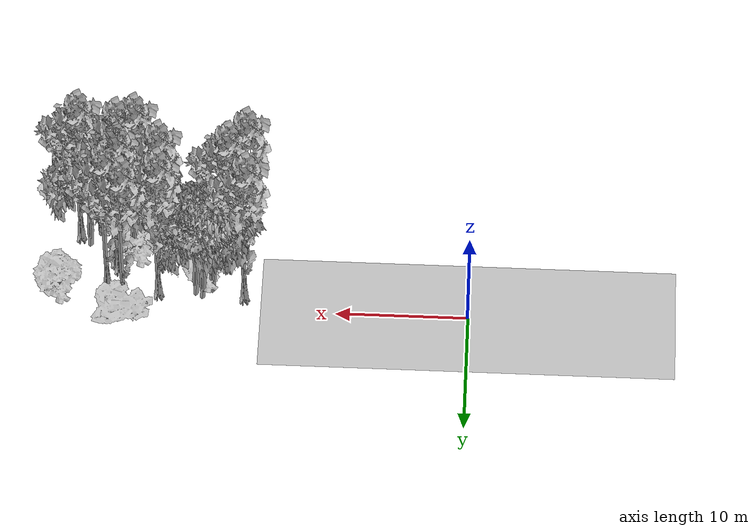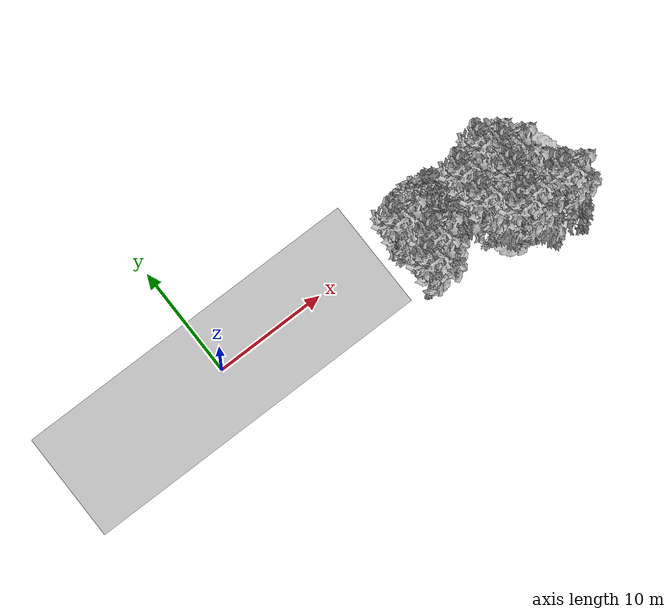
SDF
<sdf version="1.7">
 <world name="default">
  <model name="ground_plane">
   <static>1</static>
   <link name="link">
    <collision name="collision">
     <pose>-50 0 0 0 -0 0</pose>
     <geometry><plane><normal>0 0 1</normal><size>100 100</size></plane></geometry>
     <surface><contact><ode><min_depth>0.01</min_depth><max_vel>0</max_vel></ode></contact></surface>
    </collision>
    <visual name="grass">
     <cast_shadows>0</cast_shadows>
     <geometry>
      <mesh>
       <scale>0.5814285714285714 0.18142857142857144 0.1</scale>
       <uri>file://grass_plane/meshes/grass_plane.dae</uri>
      </mesh>
     </geometry>
    </visual>
   </link>
  </model>
  <model name="Tree 2">
   <static>1</static>
   <pose>16.978074154273955 -1.2482701069600246 0 1.57079 -0 0</pose>
   <link name="link">
    <collision name="collision">
     <geometry><mesh><scale>3.5 5 3.5</scale><uri>model://tree_9/meshes/tree_9.obj</uri></mesh></geometry>
    </collision>
    <visual name="visual">
     <geometry><mesh><scale>3.5 5 3.5</scale><uri>model://tree_9/meshes/tree_9.obj</uri></mesh></geometry>
    </visual>
   </link>
  </model>
  <model name="Tree 3">
   <static>1</static>
   <pose>17.121440684502417 -5.409532549476941 0 1.57079 -0 0</pose>
   <link name="link">
    <collision name="collision">
     <geometry><mesh><scale>3.5 5 3.5</scale><uri>model://tree_9/meshes/tree_9.obj</uri></mesh></geometry>
    </collision>
    <visual name="visual">
     <geometry><mesh><scale>3.5 5 3.5</scale><uri>model://tree_9/meshes/tree_9.obj</uri></mesh></geometry>
    </visual>
   </link>
  </model>
  <model name="Tree 96">
   <static>1</static>
   <pose>25.533185674046848 -4.919809020784662 0 1.57079 -0 0</pose>
   <link name="link">
    <collision name="collision">
     <geometry><mesh><scale>3.5 5 3.5</scale><uri>model://tree_2/meshes/tree_2.obj</uri></mesh></geometry>
    </collision>
    <visual name="visual">
     <geometry><mesh><scale>3.5 5 3.5</scale><uri>model://tree_2/meshes/tree_2.obj</uri></mesh></geometry>
    </visual>
   </link>
  </model>
  <model name="Tree 133">
   <static>1</static>
   <pose>23.59134145349458 -3.9370238451094792 0 1.57079 -0 0</pose>
   <link name="link">
    <collision name="collision">
     <geometry><mesh><scale>3.5 5 3.5</scale><uri>model://tree_9/meshes/tree_9.obj</uri></mesh></geometry>
    </collision>
    <visual name="visual">
     <geometry><mesh><scale>3.5 5 3.5</scale><uri>model://tree_9/meshes/tree_9.obj</uri></mesh></geometry>
    </visual>
   </link>
  </model>
  <model name="Tree 191">
   <static>1</static>
   <pose>19.94750223096557 -3.36350513803154 0 1.57079 -0 0</pose>
   <link name="link">
    <collision name="collision">
     <geometry><mesh><scale>4 2.5 4</scale><uri>model://tree_1/meshes/tree_1.obj</uri></mesh></geometry>
    </collision>
    <visual name="visual">
     <geometry><mesh><scale>4 2.5 4</scale><uri>model://tree_1/meshes/tree_1.obj</uri></mesh></geometry>
    </visual>
   </link>
  </model>
  <model name="Tree 199">
   <static>1</static>
   <pose>23.505628493203105 -1.3741584043583188 0 1.57079 -0 0</pose>
   <link name="link">
    <collision name="collision">
     <geometry><mesh><scale>3.5 5 3.5</scale><uri>model://tree_9/meshes/tree_9.obj</uri></mesh></geometry>
    </collision>
    <visual name="visual">
     <geometry><mesh><scale>3.5 5 3.5</scale><uri>model://tree_9/meshes/tree_9.obj</uri></mesh></geometry>
    </visual>
   </link>
  </model>
  <model name="Tree 200">
   <static>1</static>
   <pose>26.981032415289036 -4.140320707766277 0 1.57079 -0 0</pose>
   <link name="link">
    <collision name="collision">
     <geometry><mesh><scale>3.5 5 3.5</scale><uri>model://tree_9/meshes/tree_9.obj</uri></mesh></geometry>
    </collision>
    <visual name="visual">
     <geometry><mesh><scale>3.5 5 3.5</scale><uri>model://tree_9/meshes/tree_9.obj</uri></mesh></geometry>
    </visual>
   </link>
  </model>
  <model name="Tree 204">
   <static>1</static>
   <pose>26.20433050151358 0.5322884367012648 0 1.57079 -0 0</pose>
   <link name="link">
    <collision name="collision">
     <geometry><mesh><scale>3 2 3</scale><uri>model://tree_3/meshes/tree_3.obj</uri></mesh></geometry>
    </collision>
    <visual name="visual">
     <geometry><mesh><scale>3 2 3</scale><uri>model://tree_3/meshes/tree_3.obj</uri></mesh></geometry>
    </visual>
   </link>
  </model>
  <model name="Tree 213">
   <static>1</static>
   <pose>20.04793444001912 -1.1819959499945956 0 1.57079 -0 0</pose>
   <link name="link">
    <collision name="collision">
     <geometry><mesh><scale>3.5 5 3.5</scale><uri>model://tree_2/meshes/tree_2.obj</uri></mesh></geometry>
    </collision>
    <visual name="visual">
     <geometry><mesh><scale>3.5 5 3.5</scale><uri>model://tree_2/meshes/tree_2.obj</uri></mesh></geometry>
    </visual>
   </link>
  </model>
  <model name="Tree 241">
   <static>1</static>
   <pose>27.431095860059656 -1.9305834274147706 0 1.57079 -0 0</pose>
   <link name="link">
    <collision name="collision">
     <geometry><mesh><scale>3.5 5 3.5</scale><uri>model://tree_9/meshes/tree_9.obj</uri></mesh></geometry>
    </collision>
    <visual name="visual">
     <geometry><mesh><scale>3.5 5 3.5</scale><uri>model://tree_9/meshes/tree_9.obj</uri></mesh></geometry>
    </visual>
   </link>
  </model>
  <model name="Tree 311">
   <static>1</static>
   <pose>25.182131514696934 -5.483737394790278 0 1.57079 -0 0</pose>
   <link name="link">
    <collision name="collision">
     <geometry><mesh><scale>4 2.5 4</scale><uri>model://tree_1/meshes/tree_1.obj</uri></mesh></geometry>
    </collision>
    <visual name="visual">
     <geometry><mesh><scale>4 2.5 4</scale><uri>model://tree_1/meshes/tree_1.obj</uri></mesh></geometry>
    </visual>
   </link>
  </model>
  <model name="Tree 318">
   <static>1</static>
   <pose>25.552602280409104 -6.387904118320421 0 1.57079 -0 0</pose>
   <link name="link">
    <collision name="collision">
     <geometry><mesh><scale>3.5 5 3.5</scale><uri>model://tree_9/meshes/tree_9.obj</uri></mesh></geometry>
    </collision>
    <visual name="visual">
     <geometry><mesh><scale>3.5 5 3.5</scale><uri>model://tree_9/meshes/tree_9.obj</uri></mesh></geometry>
    </visual>
   </link>
  </model>
  <model name="Tree 346">
   <static>1</static>
   <pose>26.879108857058128 -5.904369442630767 0 1.57079 -0 0</pose>
   <link name="link">
    <collision name="collision">
     <geometry><mesh><scale>3.5 5 3.5</scale><uri>model://tree_9/meshes/tree_9.obj</uri></mesh></geometry>
    </collision>
    <visual name="visual">
     <geometry><mesh><scale>3.5 5 3.5</scale><uri>model://tree_9/meshes/tree_9.obj</uri></mesh></geometry>
    </visual>
   </link>
  </model>
  <model name="Tree 366">
   <static>1</static>
   <pose>31.05142071292869 -1.8235647983369816 0 1.57079 -0 0</pose>
   <link name="link">
    <collision name="collision">
     <geometry><mesh><scale>4 2.5 4</scale><uri>model://tree_1/meshes/tree_1.obj</uri></mesh></geometry>
    </collision>
    <visual name="visual">
     <geometry><mesh><scale>4 2.5 4</scale><uri>model://tree_1/meshes/tree_1.obj</uri></mesh></geometry>
    </visual>
   </link>
  </model>
  <model name="Tree 369">
   <static>1</static>
   <pose>28.89603834896471 -5.7263451154052625 0 1.57079 -0 0</pose>
   <link name="link">
    <collision name="collision">
     <geometry><mesh><scale>3.5 5 3.5</scale><uri>model://tree_2/meshes/tree_2.obj</uri></mesh></geometry>
    </collision>
    <visual name="visual">
     <geometry><mesh><scale>3.5 5 3.5</scale><uri>model://tree_2/meshes/tree_2.obj</uri></mesh></geometry>
    </visual>
   </link>
  </model>
  <model name="Tree 374">
   <static>1</static>
   <pose>29.7659567166193 -6.480934299087981 0 1.57079 -0 0</pose>
   <link name="link">
    <collision name="collision">
     <geometry><mesh><scale>3.5 5 3.5</scale><uri>model://tree_9/meshes/tree_9.obj</uri></mesh></geometry>
    </collision>
    <visual name="visual">
     <geometry><mesh><scale>3.5 5 3.5</scale><uri>model://tree_9/meshes/tree_9.obj</uri></mesh></geometry>
    </visual>
   </link>
  </model>
  <model name="Tree 413">
   <static>1</static>
   <pose>18.425525397015505 -4.071277578588909 0 1.57079 -0 0</pose>
   <link name="link">
    <collision name="collision">
     <geometry><mesh><scale>3.5 5 3.5</scale><uri>model://tree_9/meshes/tree_9.obj</uri></mesh></geometry>
    </collision>
    <visual name="visual">
     <geometry><mesh><scale>3.5 5 3.5</scale><uri>model://tree_9/meshes/tree_9.obj</uri></mesh></geometry>
    </visual>
   </link>
  </model>
  <model name="Tree 431">
   <static>1</static>
   <pose>26.10907218785593 -0.47996872370464416 0 1.57079 -0 0</pose>
   <link name="link">
    <collision name="collision">
     <geometry><mesh><scale>3.5 5 3.5</scale><uri>model://tree_9/meshes/tree_9.obj</uri></mesh></geometry>
    </collision>
    <visual name="visual">
     <geometry><mesh><scale>3.5 5 3.5</scale><uri>model://tree_9/meshes/tree_9.obj</uri></mesh></geometry>
    </visual>
   </link>
  </model>
  <model name="Tree 434">
   <static>1</static>
   <pose>19.30790442145579 -1.7968829097435837 0 1.57079 -0 0</pose>
   <link name="link">
    <collision name="collision">
     <geometry><mesh><scale>3.5 5 3.5</scale><uri>model://tree_2/meshes/tree_2.obj</uri></mesh></geometry>
    </collision>
    <visual name="visual">
     <geometry><mesh><scale>3.5 5 3.5</scale><uri>model://tree_2/meshes/tree_2.obj</uri></mesh></geometry>
    </visual>
   </link>
  </model>
  <model name="Tree 472">
   <static>1</static>
   <pose>28.16678562744309 -6.760047669816059 0 1.57079 -0 0</pose>
   <link name="link">
    <collision name="collision">
     <geometry><mesh><scale>3.5 5 3.5</scale><uri>model://tree_2/meshes/tree_2.obj</uri></mesh></geometry>
    </collision>
    <visual name="visual">
     <geometry><mesh><scale>3.5 5 3.5</scale><uri>model://tree_2/meshes/tree_2.obj</uri></mesh></geometry>
    </visual>
   </link>
  </model>
  <model name="Tree 514">
   <static>1</static>
   <pose>26.66472936782138 -3.551031673380521 0 1.57079 -0 0</pose>
   <link name="link">
    <collision name="collision">
     <geometry><mesh><scale>3.5 5 3.5</scale><uri>model://tree_9/meshes/tree_9.obj</uri></mesh></geometry>
    </collision>
    <visual name="visual">
     <geometry><mesh><scale>3.5 5 3.5</scale><uri>model://tree_9/meshes/tree_9.obj</uri></mesh></geometry>
    </visual>
   </link>
  </model>
  <model name="Tree 536">
   <static>1</static>
   <pose>20.56868272589955 -1.4655533551229318 0 1.57079 -0 0</pose>
   <link name="link">
    <collision name="collision">
     <geometry><mesh><scale>3.5 5 3.5</scale><uri>model://tree_2/meshes/tree_2.obj</uri></mesh></geometry>
    </collision>
    <visual name="visual">
     <geometry><mesh><scale>3.5 5 3.5</scale><uri>model://tree_2/meshes/tree_2.obj</uri></mesh></geometry>
    </visual>
   </link>
  </model>
 </world>
</sdf>
